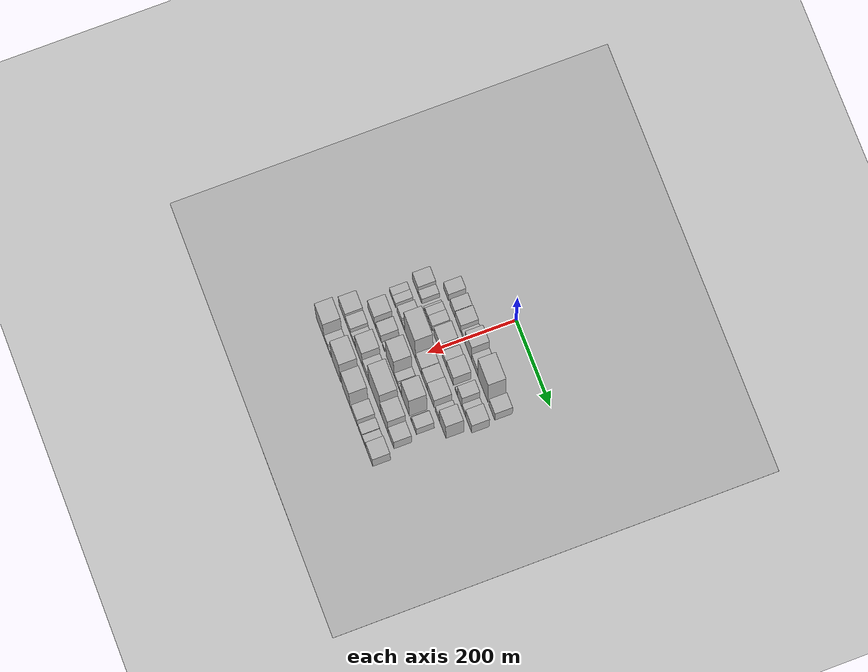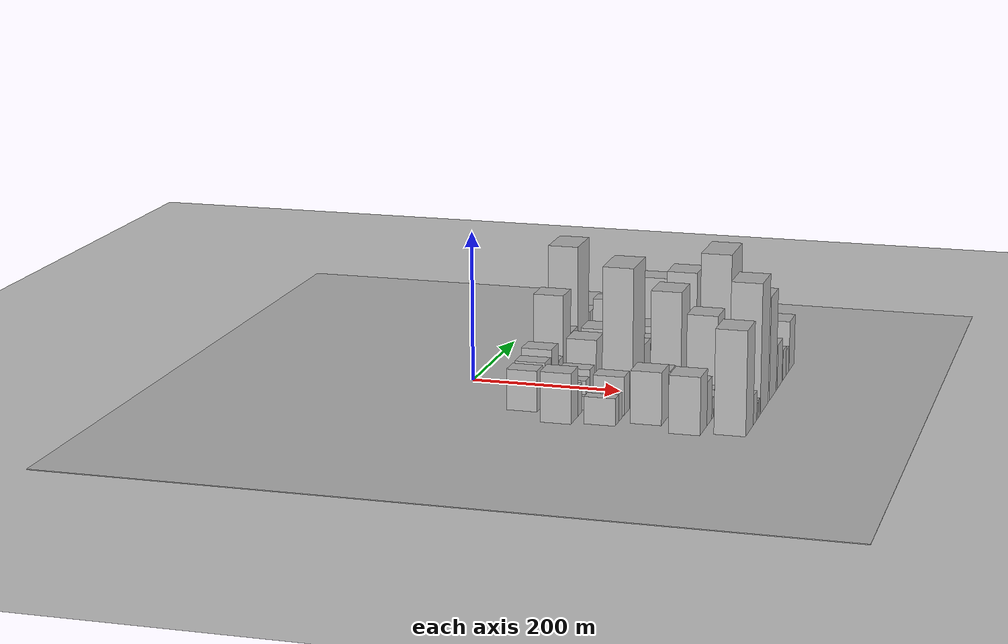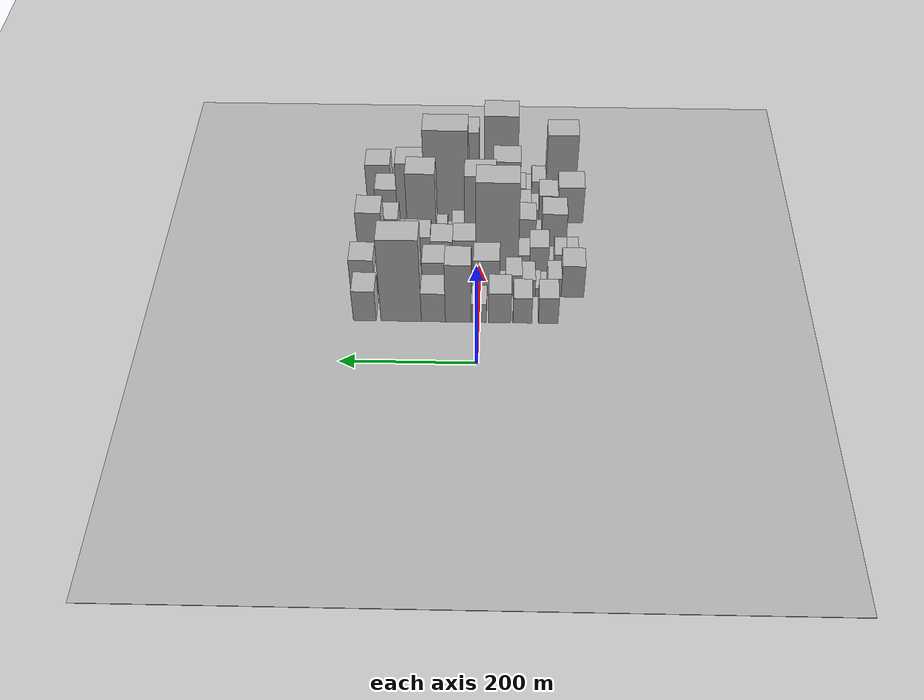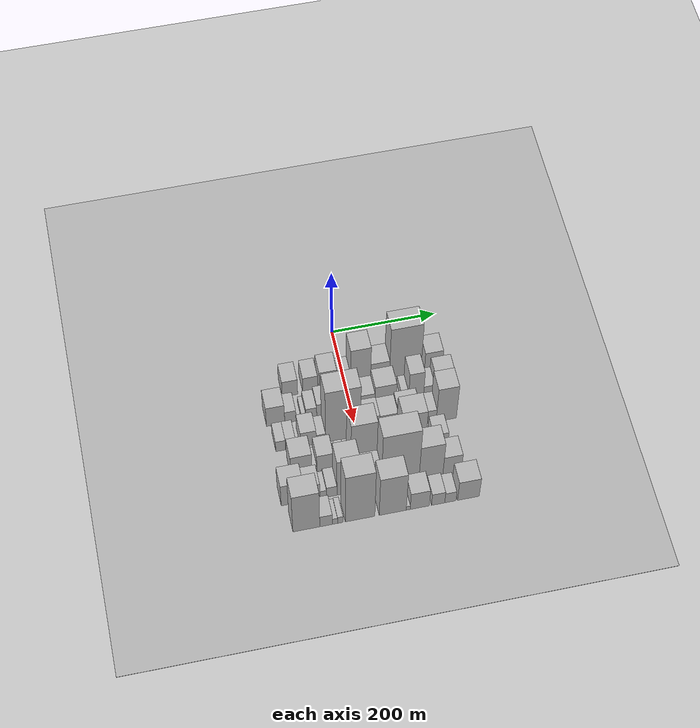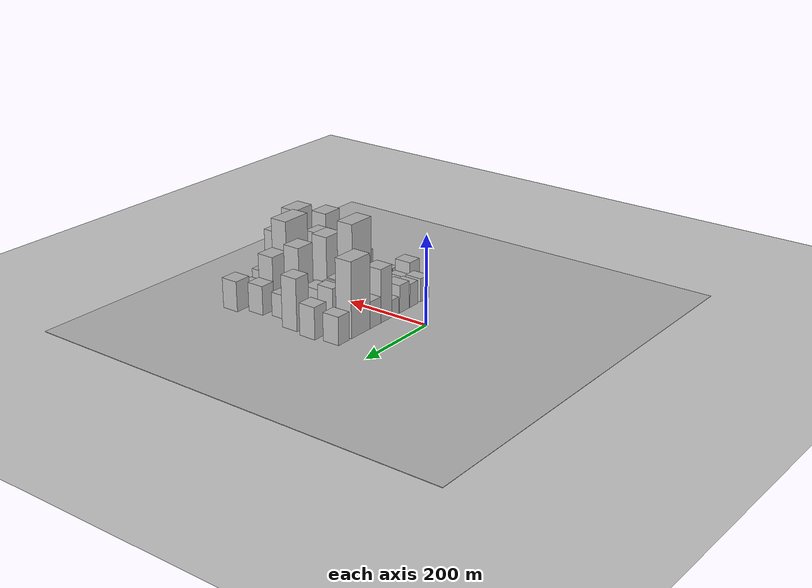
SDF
<sdf version="1.6">
 <world name="default">
  <include><name>ground_plane_1</name><uri>model://HANNAS_ground_plane</uri></include>
  <include>
   <name>ground_plane_2</name>
   <uri>model://HANNAS_ground_plane</uri>
   <pose>100 0 0  0 0 0</pose>
  </include>
  <model name="building_21">
   <static>1</static>
   <pose>100.0000 -104.7841 0 0.000000 0.000000 0.000000</pose>
   <link name="link">
    <pose>0 0 27.00 0 0 0</pose>
    <collision name="collision"><geometry><box><size>40.0000 29.2116 54.0000</size></box></geometry></collision>
    <visual name="visual">
     <cast_shadows>0</cast_shadows>
     <geometry><box><size>40.0000 29.2116 54.0000</size></box></geometry>
     <material>
      <script>
       <uri>model://HANNAS_wall/materials/scripts</uri>
       <uri>model://HANNAS_wall/materials/textures</uri>
       <name>vrc/HANNAS_wall</name>
      </script>
     </material>
    </visual>
   </link>
  </model>
  <model name="building_22">
   <static>1</static>
   <pose>100.0000 -66.1163 0 0.000000 0.000000 0.000000</pose>
   <link name="link">
    <pose>0 0 27.00 0 0 0</pose>
    <collision name="collision"><geometry><box><size>40.0000 28.1240 54.0000</size></box></geometry></collision>
    <visual name="visual">
     <cast_shadows>0</cast_shadows>
     <geometry><box><size>40.0000 28.1240 54.0000</size></box></geometry>
     <material>
      <script>
       <uri>model://HANNAS_wall/materials/scripts</uri>
       <uri>model://HANNAS_wall/materials/textures</uri>
       <name>vrc/HANNAS_wall</name>
      </script>
     </material>
    </visual>
   </link>
  </model>
  <model name="building_23">
   <static>1</static>
   <pose>100.0000 -32.3615 0 0.000000 0.000000 0.000000</pose>
   <link name="link">
    <pose>0 0 31.50 0 0 0</pose>
    <collision name="collision"><geometry><box><size>40.0000 33.3856 63.0000</size></box></geometry></collision>
    <visual name="visual">
     <cast_shadows>0</cast_shadows>
     <geometry><box><size>40.0000 33.3856 63.0000</size></box></geometry>
     <material>
      <script>
       <uri>model://HANNAS_wall/materials/scripts</uri>
       <uri>model://HANNAS_wall/materials/textures</uri>
       <name>vrc/HANNAS_wall</name>
      </script>
     </material>
    </visual>
   </link>
  </model>
  <model name="building_24">
   <static>1</static>
   <pose>100.0000 -1.1424 0 0.000000 0.000000 0.000000</pose>
   <link name="link">
    <pose>0 0 19.50 0 0 0</pose>
    <collision name="collision"><geometry><box><size>40.0000 23.0525 39.0000</size></box></geometry></collision>
    <visual name="visual">
     <cast_shadows>0</cast_shadows>
     <geometry><box><size>40.0000 23.0525 39.0000</size></box></geometry>
     <material>
      <script>
       <uri>model://HANNAS_wall/materials/scripts</uri>
       <uri>model://HANNAS_wall/materials/textures</uri>
       <name>vrc/HANNAS_wall</name>
      </script>
     </material>
    </visual>
   </link>
  </model>
  <model name="building_25">
   <static>1</static>
   <pose>100.0000 29.5940 0 0.000000 0.000000 0.000000</pose>
   <link name="link">
    <pose>0 0 60.00 0 0 0</pose>
    <collision name="collision"><geometry><box><size>40.0000 38.4205 120.0000</size></box></geometry></collision>
    <visual name="visual">
     <cast_shadows>0</cast_shadows>
     <geometry><box><size>40.0000 38.4205 120.0000</size></box></geometry>
     <material>
      <script>
       <uri>model://HANNAS_wall/materials/scripts</uri>
       <uri>model://HANNAS_wall/materials/textures</uri>
       <name>vrc/HANNAS_wall</name>
      </script>
     </material>
    </visual>
   </link>
  </model>
  <model name="building_26">
   <static>1</static>
   <pose>100.0000 66.7108 0 0.000000 0.000000 0.000000</pose>
   <link name="link">
    <pose>0 0 30.00 0 0 0</pose>
    <collision name="collision"><geometry><box><size>40.0000 35.8131 60.0000</size></box></geometry></collision>
    <visual name="visual">
     <cast_shadows>0</cast_shadows>
     <geometry><box><size>40.0000 35.8131 60.0000</size></box></geometry>
     <material>
      <script>
       <uri>model://HANNAS_wall/materials/scripts</uri>
       <uri>model://HANNAS_wall/materials/textures</uri>
       <name>vrc/HANNAS_wall</name>
      </script>
     </material>
    </visual>
   </link>
  </model>
  <model name="building_27">
   <static>1</static>
   <pose>100.0000 114.8722 0 0.000000 0.000000 0.000000</pose>
   <link name="link">
    <pose>0 0 84.00 0 0 0</pose>
    <collision name="collision"><geometry><box><size>40.0000 60.5097 168.0000</size></box></geometry></collision>
    <visual name="visual">
     <cast_shadows>0</cast_shadows>
     <geometry><box><size>40.0000 60.5097 168.0000</size></box></geometry>
     <material>
      <script>
       <uri>model://HANNAS_wall/materials/scripts</uri>
       <uri>model://HANNAS_wall/materials/textures</uri>
       <name>vrc/HANNAS_wall</name>
      </script>
     </material>
    </visual>
   </link>
  </model>
  <model name="building_28">
   <static>1</static>
   <pose>100.0000 169.2701 0 0.000000 0.000000 0.000000</pose>
   <link name="link">
    <pose>0 0 31.50 0 0 0</pose>
    <collision name="collision"><geometry><box><size>40.0000 34.2860 63.0000</size></box></geometry></collision>
    <visual name="visual">
     <cast_shadows>0</cast_shadows>
     <geometry><box><size>40.0000 34.2860 63.0000</size></box></geometry>
     <material>
      <script>
       <uri>model://HANNAS_wall/materials/scripts</uri>
       <uri>model://HANNAS_wall/materials/textures</uri>
       <name>vrc/HANNAS_wall</name>
      </script>
     </material>
    </visual>
   </link>
  </model>
  <model name="building_66">
   <static>1</static>
   <pose>155.0000 -142.3856 0 0.000000 0.000000 0.000000</pose>
   <link name="link">
    <pose>0 0 33.00 0 0 0</pose>
    <collision name="collision"><geometry><box><size>40.0000 34.3880 66.0000</size></box></geometry></collision>
    <visual name="visual">
     <cast_shadows>0</cast_shadows>
     <geometry><box><size>40.0000 34.3880 66.0000</size></box></geometry>
     <material>
      <script>
       <uri>model://HANNAS_wall/materials/scripts</uri>
       <uri>model://HANNAS_wall/materials/textures</uri>
       <name>vrc/HANNAS_wall</name>
      </script>
     </material>
    </visual>
   </link>
  </model>
  <model name="building_67">
   <static>1</static>
   <pose>155.0000 -114.5711 0 0.000000 0.000000 0.000000</pose>
   <link name="link">
    <pose>0 0 19.50 0 0 0</pose>
    <collision name="collision"><geometry><box><size>40.0000 21.2411 39.0000</size></box></geometry></collision>
    <visual name="visual">
     <cast_shadows>0</cast_shadows>
     <geometry><box><size>40.0000 21.2411 39.0000</size></box></geometry>
     <material>
      <script>
       <uri>model://HANNAS_wall/materials/scripts</uri>
       <uri>model://HANNAS_wall/materials/textures</uri>
       <name>vrc/HANNAS_wall</name>
      </script>
     </material>
    </visual>
   </link>
  </model>
  <model name="building_68">
   <static>1</static>
   <pose>155.0000 -89.7761 0 0.000000 0.000000 0.000000</pose>
   <link name="link">
    <pose>0 0 9.00 0 0 0</pose>
    <collision name="collision"><geometry><box><size>40.0000 8.3489 18.0000</size></box></geometry></collision>
    <visual name="visual">
     <cast_shadows>0</cast_shadows>
     <geometry><box><size>40.0000 8.3489 18.0000</size></box></geometry>
     <material>
      <script>
       <uri>model://HANNAS_wall/materials/scripts</uri>
       <uri>model://HANNAS_wall/materials/textures</uri>
       <name>vrc/HANNAS_wall</name>
      </script>
     </material>
    </visual>
   </link>
  </model>
  <model name="building_69">
   <static>1</static>
   <pose>155.0000 -75.3981 0 0.000000 0.000000 0.000000</pose>
   <link name="link">
    <pose>0 0 18.00 0 0 0</pose>
    <collision name="collision"><geometry><box><size>40.0000 20.4071 36.0000</size></box></geometry></collision>
    <visual name="visual">
     <cast_shadows>0</cast_shadows>
     <geometry><box><size>40.0000 20.4071 36.0000</size></box></geometry>
     <material>
      <script>
       <uri>model://HANNAS_wall/materials/scripts</uri>
       <uri>model://HANNAS_wall/materials/textures</uri>
       <name>vrc/HANNAS_wall</name>
      </script>
     </material>
    </visual>
   </link>
  </model>
  <model name="building_70">
   <static>1</static>
   <pose>155.0000 -52.7753 0 0.000000 0.000000 0.000000</pose>
   <link name="link">
    <pose>0 0 22.50 0 0 0</pose>
    <collision name="collision"><geometry><box><size>40.0000 24.8387 45.0000</size></box></geometry></collision>
    <visual name="visual">
     <cast_shadows>0</cast_shadows>
     <geometry><box><size>40.0000 24.8387 45.0000</size></box></geometry>
     <material>
      <script>
       <uri>model://HANNAS_wall/materials/scripts</uri>
       <uri>model://HANNAS_wall/materials/textures</uri>
       <name>vrc/HANNAS_wall</name>
      </script>
     </material>
    </visual>
   </link>
  </model>
  <model name="building_71">
   <static>1</static>
   <pose>155.0000 -11.5307 0 0.000000 0.000000 0.000000</pose>
   <link name="link">
    <pose>0 0 37.50 0 0 0</pose>
    <collision name="collision"><geometry><box><size>40.0000 39.6504 75.0000</size></box></geometry></collision>
    <visual name="visual">
     <cast_shadows>0</cast_shadows>
     <geometry><box><size>40.0000 39.6504 75.0000</size></box></geometry>
     <material>
      <script>
       <uri>model://HANNAS_wall/materials/scripts</uri>
       <uri>model://HANNAS_wall/materials/textures</uri>
       <name>vrc/HANNAS_wall</name>
      </script>
     </material>
    </visual>
   </link>
  </model>
  <model name="building_72">
   <static>1</static>
   <pose>155.0000 30.9175 0 0.000000 0.000000 0.000000</pose>
   <link name="link">
    <pose>0 0 24.00 0 0 0</pose>
    <collision name="collision"><geometry><box><size>40.0000 27.2462 48.0000</size></box></geometry></collision>
    <visual name="visual">
     <cast_shadows>0</cast_shadows>
     <geometry><box><size>40.0000 27.2462 48.0000</size></box></geometry>
     <material>
      <script>
       <uri>model://HANNAS_wall/materials/scripts</uri>
       <uri>model://HANNAS_wall/materials/textures</uri>
       <name>vrc/HANNAS_wall</name>
      </script>
     </material>
    </visual>
   </link>
  </model>
  <model name="building_73">
   <static>1</static>
   <pose>155.0000 64.9169 0 0.000000 0.000000 0.000000</pose>
   <link name="link">
    <pose>0 0 34.50 0 0 0</pose>
    <collision name="collision"><geometry><box><size>40.0000 40.7525 69.0000</size></box></geometry></collision>
    <visual name="visual">
     <cast_shadows>0</cast_shadows>
     <geometry><box><size>40.0000 40.7525 69.0000</size></box></geometry>
     <material>
      <script>
       <uri>model://HANNAS_wall/materials/scripts</uri>
       <uri>model://HANNAS_wall/materials/textures</uri>
       <name>vrc/HANNAS_wall</name>
      </script>
     </material>
    </visual>
   </link>
  </model>
  <model name="building_74">
   <static>1</static>
   <pose>155.0000 102.0256 0 0.000000 0.000000 0.000000</pose>
   <link name="link">
    <pose>0 0 13.50 0 0 0</pose>
    <collision name="collision"><geometry><box><size>40.0000 13.4650 27.0000</size></box></geometry></collision>
    <visual name="visual">
     <cast_shadows>0</cast_shadows>
     <geometry><box><size>40.0000 13.4650 27.0000</size></box></geometry>
     <material>
      <script>
       <uri>model://HANNAS_wall/materials/scripts</uri>
       <uri>model://HANNAS_wall/materials/textures</uri>
       <name>vrc/HANNAS_wall</name>
      </script>
     </material>
    </visual>
   </link>
  </model>
  <model name="building_75">
   <static>1</static>
   <pose>155.0000 122.9810 0 0.000000 0.000000 0.000000</pose>
   <link name="link">
    <pose>0 0 46.50 0 0 0</pose>
    <collision name="collision"><geometry><box><size>40.0000 28.4457 93.0000</size></box></geometry></collision>
    <visual name="visual">
     <cast_shadows>0</cast_shadows>
     <geometry><box><size>40.0000 28.4457 93.0000</size></box></geometry>
     <material>
      <script>
       <uri>model://HANNAS_wall/materials/scripts</uri>
       <uri>model://HANNAS_wall/materials/textures</uri>
       <name>vrc/HANNAS_wall</name>
      </script>
     </material>
    </visual>
   </link>
  </model>
  <model name="building_76">
   <static>1</static>
   <pose>155.0000 147.5843 0 0.000000 0.000000 0.000000</pose>
   <link name="link">
    <pose>0 0 19.50 0 0 0</pose>
    <collision name="collision"><geometry><box><size>40.0000 20.7608 39.0000</size></box></geometry></collision>
    <visual name="visual">
     <cast_shadows>0</cast_shadows>
     <geometry><box><size>40.0000 20.7608 39.0000</size></box></geometry>
     <material>
      <script>
       <uri>model://HANNAS_wall/materials/scripts</uri>
       <uri>model://HANNAS_wall/materials/textures</uri>
       <name>vrc/HANNAS_wall</name>
      </script>
     </material>
    </visual>
   </link>
  </model>
  <model name="building_77">
   <static>1</static>
   <pose>155.0000 176.4453 0 0.000000 0.000000 0.000000</pose>
   <link name="link">
    <pose>0 0 36.00 0 0 0</pose>
    <collision name="collision"><geometry><box><size>40.0000 36.9612 72.0000</size></box></geometry></collision>
    <visual name="visual">
     <cast_shadows>0</cast_shadows>
     <geometry><box><size>40.0000 36.9612 72.0000</size></box></geometry>
     <material>
      <script>
       <uri>model://HANNAS_wall/materials/scripts</uri>
       <uri>model://HANNAS_wall/materials/textures</uri>
       <name>vrc/HANNAS_wall</name>
      </script>
     </material>
    </visual>
   </link>
  </model>
  <model name="building_119">
   <static>1</static>
   <pose>210.0000 -143.4747 0 0.000000 0.000000 0.000000</pose>
   <link name="link">
    <pose>0 0 18.00 0 0 0</pose>
    <collision name="collision"><geometry><box><size>40.0000 18.1914 36.0000</size></box></geometry></collision>
    <visual name="visual">
     <cast_shadows>0</cast_shadows>
     <geometry><box><size>40.0000 18.1914 36.0000</size></box></geometry>
     <material>
      <script>
       <uri>model://HANNAS_wall/materials/scripts</uri>
       <uri>model://HANNAS_wall/materials/textures</uri>
       <name>vrc/HANNAS_wall</name>
      </script>
     </material>
    </visual>
   </link>
  </model>
  <model name="building_120">
   <static>1</static>
   <pose>210.0000 -125.0250 0 0.000000 0.000000 0.000000</pose>
   <link name="link">
    <pose>0 0 18.00 0 0 0</pose>
    <collision name="collision"><geometry><box><size>40.0000 18.7080 36.0000</size></box></geometry></collision>
    <visual name="visual">
     <cast_shadows>0</cast_shadows>
     <geometry><box><size>40.0000 18.7080 36.0000</size></box></geometry>
     <material>
      <script>
       <uri>model://HANNAS_wall/materials/scripts</uri>
       <uri>model://HANNAS_wall/materials/textures</uri>
       <name>vrc/HANNAS_wall</name>
      </script>
     </material>
    </visual>
   </link>
  </model>
  <model name="building_121">
   <static>1</static>
   <pose>210.0000 -91.9413 0 0.000000 0.000000 0.000000</pose>
   <link name="link">
    <pose>0 0 25.50 0 0 0</pose>
    <collision name="collision"><geometry><box><size>40.0000 29.4593 51.0000</size></box></geometry></collision>
    <visual name="visual">
     <cast_shadows>0</cast_shadows>
     <geometry><box><size>40.0000 29.4593 51.0000</size></box></geometry>
     <material>
      <script>
       <uri>model://HANNAS_wall/materials/scripts</uri>
       <uri>model://HANNAS_wall/materials/textures</uri>
       <name>vrc/HANNAS_wall</name>
      </script>
     </material>
    </visual>
   </link>
  </model>
  <model name="building_122">
   <static>1</static>
   <pose>210.0000 -68.4383 0 0.000000 0.000000 0.000000</pose>
   <link name="link">
    <pose>0 0 16.50 0 0 0</pose>
    <collision name="collision"><geometry><box><size>40.0000 17.5467 33.0000</size></box></geometry></collision>
    <visual name="visual">
     <cast_shadows>0</cast_shadows>
     <geometry><box><size>40.0000 17.5467 33.0000</size></box></geometry>
     <material>
      <script>
       <uri>model://HANNAS_wall/materials/scripts</uri>
       <uri>model://HANNAS_wall/materials/textures</uri>
       <name>vrc/HANNAS_wall</name>
      </script>
     </material>
    </visual>
   </link>
  </model>
  <model name="building_123">
   <static>1</static>
   <pose>210.0000 -27.0615 0 0.000000 0.000000 0.000000</pose>
   <link name="link">
    <pose>0 0 90.00 0 0 0</pose>
    <collision name="collision"><geometry><box><size>40.0000 65.2070 180.0000</size></box></geometry></collision>
    <visual name="visual">
     <cast_shadows>0</cast_shadows>
     <geometry><box><size>40.0000 65.2070 180.0000</size></box></geometry>
     <material>
      <script>
       <uri>model://HANNAS_wall/materials/scripts</uri>
       <uri>model://HANNAS_wall/materials/textures</uri>
       <name>vrc/HANNAS_wall</name>
      </script>
     </material>
    </visual>
   </link>
  </model>
  <model name="building_124">
   <static>1</static>
   <pose>210.0000 23.4171 0 0.000000 0.000000 0.000000</pose>
   <link name="link">
    <pose>0 0 31.50 0 0 0</pose>
    <collision name="collision"><geometry><box><size>40.0000 35.7502 63.0000</size></box></geometry></collision>
    <visual name="visual">
     <cast_shadows>0</cast_shadows>
     <geometry><box><size>40.0000 35.7502 63.0000</size></box></geometry>
     <material>
      <script>
       <uri>model://HANNAS_wall/materials/scripts</uri>
       <uri>model://HANNAS_wall/materials/textures</uri>
       <name>vrc/HANNAS_wall</name>
      </script>
     </material>
    </visual>
   </link>
  </model>
  <model name="building_125">
   <static>1</static>
   <pose>210.0000 58.3332 0 0.000000 0.000000 0.000000</pose>
   <link name="link">
    <pose>0 0 30.00 0 0 0</pose>
    <collision name="collision"><geometry><box><size>40.0000 34.0820 60.0000</size></box></geometry></collision>
    <visual name="visual">
     <cast_shadows>0</cast_shadows>
     <geometry><box><size>40.0000 34.0820 60.0000</size></box></geometry>
     <material>
      <script>
       <uri>model://HANNAS_wall/materials/scripts</uri>
       <uri>model://HANNAS_wall/materials/textures</uri>
       <name>vrc/HANNAS_wall</name>
      </script>
     </material>
    </visual>
   </link>
  </model>
  <model name="building_126">
   <static>1</static>
   <pose>210.0000 95.7252 0 0.000000 0.000000 0.000000</pose>
   <link name="link">
    <pose>0 0 34.50 0 0 0</pose>
    <collision name="collision"><geometry><box><size>40.0000 40.7021 69.0000</size></box></geometry></collision>
    <visual name="visual">
     <cast_shadows>0</cast_shadows>
     <geometry><box><size>40.0000 40.7021 69.0000</size></box></geometry>
     <material>
      <script>
       <uri>model://HANNAS_wall/materials/scripts</uri>
       <uri>model://HANNAS_wall/materials/textures</uri>
       <name>vrc/HANNAS_wall</name>
      </script>
     </material>
    </visual>
   </link>
  </model>
  <model name="building_127">
   <static>1</static>
   <pose>210.0000 135.6655 0 0.000000 0.000000 0.000000</pose>
   <link name="link">
    <pose>0 0 22.50 0 0 0</pose>
    <collision name="collision"><geometry><box><size>40.0000 25.1785 45.0000</size></box></geometry></collision>
    <visual name="visual">
     <cast_shadows>0</cast_shadows>
     <geometry><box><size>40.0000 25.1785 45.0000</size></box></geometry>
     <material>
      <script>
       <uri>model://HANNAS_wall/materials/scripts</uri>
       <uri>model://HANNAS_wall/materials/textures</uri>
       <name>vrc/HANNAS_wall</name>
      </script>
     </material>
    </visual>
   </link>
  </model>
  <model name="building_128">
   <static>1</static>
   <pose>210.0000 167.3980 0 0.000000 0.000000 0.000000</pose>
   <link name="link">
    <pose>0 0 58.50 0 0 0</pose>
    <collision name="collision"><geometry><box><size>40.0000 38.2865 117.0000</size></box></geometry></collision>
    <visual name="visual">
     <cast_shadows>0</cast_shadows>
     <geometry><box><size>40.0000 38.2865 117.0000</size></box></geometry>
     <material>
      <script>
       <uri>model://HANNAS_wall/materials/scripts</uri>
       <uri>model://HANNAS_wall/materials/textures</uri>
       <name>vrc/HANNAS_wall</name>
      </script>
     </material>
    </visual>
   </link>
  </model>
  <model name="building_174">
   <static>1</static>
   <pose>265.0000 -116.0146 0 0.000000 0.000000 0.000000</pose>
   <link name="link">
    <pose>0 0 34.50 0 0 0</pose>
    <collision name="collision"><geometry><box><size>40.0000 39.2224 69.0000</size></box></geometry></collision>
    <visual name="visual">
     <cast_shadows>0</cast_shadows>
     <geometry><box><size>40.0000 39.2224 69.0000</size></box></geometry>
     <material>
      <script>
       <uri>model://HANNAS_wall/materials/scripts</uri>
       <uri>model://HANNAS_wall/materials/textures</uri>
       <name>vrc/HANNAS_wall</name>
      </script>
     </material>
    </visual>
   </link>
  </model>
  <model name="building_175">
   <static>1</static>
   <pose>265.0000 -91.8677 0 0.000000 0.000000 0.000000</pose>
   <link name="link">
    <pose>0 0 10.50 0 0 0</pose>
    <collision name="collision"><geometry><box><size>40.0000 9.0713 21.0000</size></box></geometry></collision>
    <visual name="visual">
     <cast_shadows>0</cast_shadows>
     <geometry><box><size>40.0000 9.0713 21.0000</size></box></geometry>
     <material>
      <script>
       <uri>model://HANNAS_wall/materials/scripts</uri>
       <uri>model://HANNAS_wall/materials/textures</uri>
       <name>vrc/HANNAS_wall</name>
      </script>
     </material>
    </visual>
   </link>
  </model>
  <model name="building_176">
   <static>1</static>
   <pose>265.0000 -71.9111 0 0.000000 0.000000 0.000000</pose>
   <link name="link">
    <pose>0 0 28.50 0 0 0</pose>
    <collision name="collision"><geometry><box><size>40.0000 30.8420 57.0000</size></box></geometry></collision>
    <visual name="visual">
     <cast_shadows>0</cast_shadows>
     <geometry><box><size>40.0000 30.8420 57.0000</size></box></geometry>
     <material>
      <script>
       <uri>model://HANNAS_wall/materials/scripts</uri>
       <uri>model://HANNAS_wall/materials/textures</uri>
       <name>vrc/HANNAS_wall</name>
      </script>
     </material>
    </visual>
   </link>
  </model>
  <model name="building_177">
   <static>1</static>
   <pose>265.0000 -41.8620 0 0.000000 0.000000 0.000000</pose>
   <link name="link">
    <pose>0 0 15.00 0 0 0</pose>
    <collision name="collision"><geometry><box><size>40.0000 15.2563 30.0000</size></box></geometry></collision>
    <visual name="visual">
     <cast_shadows>0</cast_shadows>
     <geometry><box><size>40.0000 15.2563 30.0000</size></box></geometry>
     <material>
      <script>
       <uri>model://HANNAS_wall/materials/scripts</uri>
       <uri>model://HANNAS_wall/materials/textures</uri>
       <name>vrc/HANNAS_wall</name>
      </script>
     </material>
    </visual>
   </link>
  </model>
  <model name="building_178">
   <static>1</static>
   <pose>265.0000 0.0882 0 0.000000 0.000000 0.000000</pose>
   <link name="link">
    <pose>0 0 72.00 0 0 0</pose>
    <collision name="collision"><geometry><box><size>40.0000 48.6441 144.0000</size></box></geometry></collision>
    <visual name="visual">
     <cast_shadows>0</cast_shadows>
     <geometry><box><size>40.0000 48.6441 144.0000</size></box></geometry>
     <material>
      <script>
       <uri>model://HANNAS_wall/materials/scripts</uri>
       <uri>model://HANNAS_wall/materials/textures</uri>
       <name>vrc/HANNAS_wall</name>
      </script>
     </material>
    </visual>
   </link>
  </model>
  <model name="building_179">
   <static>1</static>
   <pose>265.0000 34.5836 0 0.000000 0.000000 0.000000</pose>
   <link name="link">
    <pose>0 0 19.50 0 0 0</pose>
    <collision name="collision"><geometry><box><size>40.0000 20.3467 39.0000</size></box></geometry></collision>
    <visual name="visual">
     <cast_shadows>0</cast_shadows>
     <geometry><box><size>40.0000 20.3467 39.0000</size></box></geometry>
     <material>
      <script>
       <uri>model://HANNAS_wall/materials/scripts</uri>
       <uri>model://HANNAS_wall/materials/textures</uri>
       <name>vrc/HANNAS_wall</name>
      </script>
     </material>
    </visual>
   </link>
  </model>
  <model name="building_180">
   <static>1</static>
   <pose>265.0000 48.4601 0 0.000000 0.000000 0.000000</pose>
   <link name="link">
    <pose>0 0 7.50 0 0 0</pose>
    <collision name="collision"><geometry><box><size>40.0000 7.4063 15.0000</size></box></geometry></collision>
    <visual name="visual">
     <cast_shadows>0</cast_shadows>
     <geometry><box><size>40.0000 7.4063 15.0000</size></box></geometry>
     <material>
      <script>
       <uri>model://HANNAS_wall/materials/scripts</uri>
       <uri>model://HANNAS_wall/materials/textures</uri>
       <name>vrc/HANNAS_wall</name>
      </script>
     </material>
    </visual>
   </link>
  </model>
  <model name="building_181">
   <static>1</static>
   <pose>265.0000 60.6278 0 0.000000 0.000000 0.000000</pose>
   <link name="link">
    <pose>0 0 15.00 0 0 0</pose>
    <collision name="collision"><geometry><box><size>40.0000 16.9291 30.0000</size></box></geometry></collision>
    <visual name="visual">
     <cast_shadows>0</cast_shadows>
     <geometry><box><size>40.0000 16.9291 30.0000</size></box></geometry>
     <material>
      <script>
       <uri>model://HANNAS_wall/materials/scripts</uri>
       <uri>model://HANNAS_wall/materials/textures</uri>
       <name>vrc/HANNAS_wall</name>
      </script>
     </material>
    </visual>
   </link>
  </model>
  <model name="building_182">
   <static>1</static>
   <pose>265.0000 91.6451 0 0.000000 0.000000 0.000000</pose>
   <link name="link">
    <pose>0 0 73.50 0 0 0</pose>
    <collision name="collision"><geometry><box><size>40.0000 45.1054 147.0000</size></box></geometry></collision>
    <visual name="visual">
     <cast_shadows>0</cast_shadows>
     <geometry><box><size>40.0000 45.1054 147.0000</size></box></geometry>
     <material>
      <script>
       <uri>model://HANNAS_wall/materials/scripts</uri>
       <uri>model://HANNAS_wall/materials/textures</uri>
       <name>vrc/HANNAS_wall</name>
      </script>
     </material>
    </visual>
   </link>
  </model>
  <model name="building_183">
   <static>1</static>
   <pose>265.0000 124.5197 0 0.000000 0.000000 0.000000</pose>
   <link name="link">
    <pose>0 0 9.00 0 0 0</pose>
    <collision name="collision"><geometry><box><size>40.0000 8.6438 18.0000</size></box></geometry></collision>
    <visual name="visual">
     <cast_shadows>0</cast_shadows>
     <geometry><box><size>40.0000 8.6438 18.0000</size></box></geometry>
     <material>
      <script>
       <uri>model://HANNAS_wall/materials/scripts</uri>
       <uri>model://HANNAS_wall/materials/textures</uri>
       <name>vrc/HANNAS_wall</name>
      </script>
     </material>
    </visual>
   </link>
  </model>
  <model name="building_184">
   <static>1</static>
   <pose>265.0000 142.8534 0 0.000000 0.000000 0.000000</pose>
   <link name="link">
    <pose>0 0 27.00 0 0 0</pose>
    <collision name="collision"><geometry><box><size>40.0000 28.0237 54.0000</size></box></geometry></collision>
    <visual name="visual">
     <cast_shadows>0</cast_shadows>
     <geometry><box><size>40.0000 28.0237 54.0000</size></box></geometry>
     <material>
      <script>
       <uri>model://HANNAS_wall/materials/scripts</uri>
       <uri>model://HANNAS_wall/materials/textures</uri>
       <name>vrc/HANNAS_wall</name>
      </script>
     </material>
    </visual>
   </link>
  </model>
  <model name="building_230">
   <static>1</static>
   <pose>320.0000 -143.3285 0 0.000000 0.000000 0.000000</pose>
   <link name="link">
    <pose>0 0 37.50 0 0 0</pose>
    <collision name="collision"><geometry><box><size>40.0000 41.0558 75.0000</size></box></geometry></collision>
    <visual name="visual">
     <cast_shadows>0</cast_shadows>
     <geometry><box><size>40.0000 41.0558 75.0000</size></box></geometry>
     <material>
      <script>
       <uri>model://HANNAS_wall/materials/scripts</uri>
       <uri>model://HANNAS_wall/materials/textures</uri>
       <name>vrc/HANNAS_wall</name>
      </script>
     </material>
    </visual>
   </link>
  </model>
  <model name="building_231">
   <static>1</static>
   <pose>320.0000 -107.8401 0 0.000000 0.000000 0.000000</pose>
   <link name="link">
    <pose>0 0 28.50 0 0 0</pose>
    <collision name="collision"><geometry><box><size>40.0000 29.9210 57.0000</size></box></geometry></collision>
    <visual name="visual">
     <cast_shadows>0</cast_shadows>
     <geometry><box><size>40.0000 29.9210 57.0000</size></box></geometry>
     <material>
      <script>
       <uri>model://HANNAS_wall/materials/scripts</uri>
       <uri>model://HANNAS_wall/materials/textures</uri>
       <name>vrc/HANNAS_wall</name>
      </script>
     </material>
    </visual>
   </link>
  </model>
  <model name="building_232">
   <static>1</static>
   <pose>320.0000 -86.8398 0 0.000000 0.000000 0.000000</pose>
   <link name="link">
    <pose>0 0 13.50 0 0 0</pose>
    <collision name="collision"><geometry><box><size>40.0000 12.0794 27.0000</size></box></geometry></collision>
    <visual name="visual">
     <cast_shadows>0</cast_shadows>
     <geometry><box><size>40.0000 12.0794 27.0000</size></box></geometry>
     <material>
      <script>
       <uri>model://HANNAS_wall/materials/scripts</uri>
       <uri>model://HANNAS_wall/materials/textures</uri>
       <name>vrc/HANNAS_wall</name>
      </script>
     </material>
    </visual>
   </link>
  </model>
  <model name="building_233">
   <static>1</static>
   <pose>320.0000 -71.2586 0 0.000000 0.000000 0.000000</pose>
   <link name="link">
    <pose>0 0 18.00 0 0 0</pose>
    <collision name="collision"><geometry><box><size>40.0000 19.0831 36.0000</size></box></geometry></collision>
    <visual name="visual">
     <cast_shadows>0</cast_shadows>
     <geometry><box><size>40.0000 19.0831 36.0000</size></box></geometry>
     <material>
      <script>
       <uri>model://HANNAS_wall/materials/scripts</uri>
       <uri>model://HANNAS_wall/materials/textures</uri>
       <name>vrc/HANNAS_wall</name>
      </script>
     </material>
    </visual>
   </link>
  </model>
  <model name="building_234">
   <static>1</static>
   <pose>320.0000 -40.6106 0 0.000000 0.000000 0.000000</pose>
   <link name="link">
    <pose>0 0 63.00 0 0 0</pose>
    <collision name="collision"><geometry><box><size>40.0000 42.2128 126.0000</size></box></geometry></collision>
    <visual name="visual">
     <cast_shadows>0</cast_shadows>
     <geometry><box><size>40.0000 42.2128 126.0000</size></box></geometry>
     <material>
      <script>
       <uri>model://HANNAS_wall/materials/scripts</uri>
       <uri>model://HANNAS_wall/materials/textures</uri>
       <name>vrc/HANNAS_wall</name>
      </script>
     </material>
    </visual>
   </link>
  </model>
  <model name="building_235">
   <static>1</static>
   <pose>320.0000 0.3163 0 0.000000 0.000000 0.000000</pose>
   <link name="link">
    <pose>0 0 34.50 0 0 0</pose>
    <collision name="collision"><geometry><box><size>40.0000 39.6410 69.0000</size></box></geometry></collision>
    <visual name="visual">
     <cast_shadows>0</cast_shadows>
     <geometry><box><size>40.0000 39.6410 69.0000</size></box></geometry>
     <material>
      <script>
       <uri>model://HANNAS_wall/materials/scripts</uri>
       <uri>model://HANNAS_wall/materials/textures</uri>
       <name>vrc/HANNAS_wall</name>
      </script>
     </material>
    </visual>
   </link>
  </model>
  <model name="building_236">
   <static>1</static>
   <pose>320.0000 55.0001 0 0.000000 0.000000 0.000000</pose>
   <link name="link">
    <pose>0 0 93.00 0 0 0</pose>
    <collision name="collision"><geometry><box><size>40.0000 69.7267 186.0000</size></box></geometry></collision>
    <visual name="visual">
     <cast_shadows>0</cast_shadows>
     <geometry><box><size>40.0000 69.7267 186.0000</size></box></geometry>
     <material>
      <script>
       <uri>model://HANNAS_wall/materials/scripts</uri>
       <uri>model://HANNAS_wall/materials/textures</uri>
       <name>vrc/HANNAS_wall</name>
      </script>
     </material>
    </visual>
   </link>
  </model>
  <model name="building_237">
   <static>1</static>
   <pose>320.0000 112.0720 0 0.000000 0.000000 0.000000</pose>
   <link name="link">
    <pose>0 0 60.00 0 0 0</pose>
    <collision name="collision"><geometry><box><size>40.0000 44.4170 120.0000</size></box></geometry></collision>
    <visual name="visual">
     <cast_shadows>0</cast_shadows>
     <geometry><box><size>40.0000 44.4170 120.0000</size></box></geometry>
     <material>
      <script>
       <uri>model://HANNAS_wall/materials/scripts</uri>
       <uri>model://HANNAS_wall/materials/textures</uri>
       <name>vrc/HANNAS_wall</name>
      </script>
     </material>
    </visual>
   </link>
  </model>
  <model name="building_238">
   <static>1</static>
   <pose>320.0000 151.5237 0 0.000000 0.000000 0.000000</pose>
   <link name="link">
    <pose>0 0 33.00 0 0 0</pose>
    <collision name="collision"><geometry><box><size>40.0000 34.4865 66.0000</size></box></geometry></collision>
    <visual name="visual">
     <cast_shadows>0</cast_shadows>
     <geometry><box><size>40.0000 34.4865 66.0000</size></box></geometry>
     <material>
      <script>
       <uri>model://HANNAS_wall/materials/scripts</uri>
       <uri>model://HANNAS_wall/materials/textures</uri>
       <name>vrc/HANNAS_wall</name>
      </script>
     </material>
    </visual>
   </link>
  </model>
  <model name="building_278">
   <static>1</static>
   <pose>375.0000 -128.8965 0 0.000000 0.000000 0.000000</pose>
   <link name="link">
    <pose>0 0 67.50 0 0 0</pose>
    <collision name="collision"><geometry><box><size>40.0000 48.8987 135.0000</size></box></geometry></collision>
    <visual name="visual">
     <cast_shadows>0</cast_shadows>
     <geometry><box><size>40.0000 48.8987 135.0000</size></box></geometry>
     <material>
      <script>
       <uri>model://HANNAS_wall/materials/scripts</uri>
       <uri>model://HANNAS_wall/materials/textures</uri>
       <name>vrc/HANNAS_wall</name>
      </script>
     </material>
    </visual>
   </link>
  </model>
  <model name="building_279">
   <static>1</static>
   <pose>375.0000 -92.9913 0 0.000000 0.000000 0.000000</pose>
   <link name="link">
    <pose>0 0 19.50 0 0 0</pose>
    <collision name="collision"><geometry><box><size>40.0000 22.9118 39.0000</size></box></geometry></collision>
    <visual name="visual">
     <cast_shadows>0</cast_shadows>
     <geometry><box><size>40.0000 22.9118 39.0000</size></box></geometry>
     <material>
      <script>
       <uri>model://HANNAS_wall/materials/scripts</uri>
       <uri>model://HANNAS_wall/materials/textures</uri>
       <name>vrc/HANNAS_wall</name>
      </script>
     </material>
    </visual>
   </link>
  </model>
  <model name="building_280">
   <static>1</static>
   <pose>375.0000 -76.8929 0 0.000000 0.000000 0.000000</pose>
   <link name="link">
    <pose>0 0 10.50 0 0 0</pose>
    <collision name="collision"><geometry><box><size>40.0000 9.2851 21.0000</size></box></geometry></collision>
    <visual name="visual">
     <cast_shadows>0</cast_shadows>
     <geometry><box><size>40.0000 9.2851 21.0000</size></box></geometry>
     <material>
      <script>
       <uri>model://HANNAS_wall/materials/scripts</uri>
       <uri>model://HANNAS_wall/materials/textures</uri>
       <name>vrc/HANNAS_wall</name>
      </script>
     </material>
    </visual>
   </link>
  </model>
  <model name="building_281">
   <static>1</static>
   <pose>375.0000 -67.1995 0 0.000000 0.000000 0.000000</pose>
   <link name="link">
    <pose>0 0 12.00 0 0 0</pose>
    <collision name="collision"><geometry><box><size>40.0000 10.1016 24.0000</size></box></geometry></collision>
    <visual name="visual">
     <cast_shadows>0</cast_shadows>
     <geometry><box><size>40.0000 10.1016 24.0000</size></box></geometry>
     <material>
      <script>
       <uri>model://HANNAS_wall/materials/scripts</uri>
       <uri>model://HANNAS_wall/materials/textures</uri>
       <name>vrc/HANNAS_wall</name>
      </script>
     </material>
    </visual>
   </link>
  </model>
  <model name="building_282">
   <static>1</static>
   <pose>375.0000 -31.0956 0 0.000000 0.000000 0.000000</pose>
   <link name="link">
    <pose>0 0 85.50 0 0 0</pose>
    <collision name="collision"><geometry><box><size>40.0000 54.1062 171.0000</size></box></geometry></collision>
    <visual name="visual">
     <cast_shadows>0</cast_shadows>
     <geometry><box><size>40.0000 54.1062 171.0000</size></box></geometry>
     <material>
      <script>
       <uri>model://HANNAS_wall/materials/scripts</uri>
       <uri>model://HANNAS_wall/materials/textures</uri>
       <name>vrc/HANNAS_wall</name>
      </script>
     </material>
    </visual>
   </link>
  </model>
  <model name="building_283">
   <static>1</static>
   <pose>375.0000 28.7599 0 0.000000 0.000000 0.000000</pose>
   <link name="link">
    <pose>0 0 69.00 0 0 0</pose>
    <collision name="collision"><geometry><box><size>40.0000 49.6047 138.0000</size></box></geometry></collision>
    <visual name="visual">
     <cast_shadows>0</cast_shadows>
     <geometry><box><size>40.0000 49.6047 138.0000</size></box></geometry>
     <material>
      <script>
       <uri>model://HANNAS_wall/materials/scripts</uri>
       <uri>model://HANNAS_wall/materials/textures</uri>
       <name>vrc/HANNAS_wall</name>
      </script>
     </material>
    </visual>
   </link>
  </model>
  <model name="building_284">
   <static>1</static>
   <pose>375.0000 57.2047 0 0.000000 0.000000 0.000000</pose>
   <link name="link">
    <pose>0 0 7.50 0 0 0</pose>
    <collision name="collision"><geometry><box><size>40.0000 7.2850 15.0000</size></box></geometry></collision>
    <visual name="visual">
     <cast_shadows>0</cast_shadows>
     <geometry><box><size>40.0000 7.2850 15.0000</size></box></geometry>
     <material>
      <script>
       <uri>model://HANNAS_wall/materials/scripts</uri>
       <uri>model://HANNAS_wall/materials/textures</uri>
       <name>vrc/HANNAS_wall</name>
      </script>
     </material>
    </visual>
   </link>
  </model>
  <model name="building_285">
   <static>1</static>
   <pose>375.0000 78.4890 0 0.000000 0.000000 0.000000</pose>
   <link name="link">
    <pose>0 0 30.00 0 0 0</pose>
    <collision name="collision"><geometry><box><size>40.0000 35.2836 60.0000</size></box></geometry></collision>
    <visual name="visual">
     <cast_shadows>0</cast_shadows>
     <geometry><box><size>40.0000 35.2836 60.0000</size></box></geometry>
     <material>
      <script>
       <uri>model://HANNAS_wall/materials/scripts</uri>
       <uri>model://HANNAS_wall/materials/textures</uri>
       <name>vrc/HANNAS_wall</name>
      </script>
     </material>
    </visual>
   </link>
  </model>
  <model name="building_286">
   <static>1</static>
   <pose>375.0000 112.3815 0 0.000000 0.000000 0.000000</pose>
   <link name="link">
    <pose>0 0 21.00 0 0 0</pose>
    <collision name="collision"><geometry><box><size>40.0000 24.5013 42.0000</size></box></geometry></collision>
    <visual name="visual">
     <cast_shadows>0</cast_shadows>
     <geometry><box><size>40.0000 24.5013 42.0000</size></box></geometry>
     <material>
      <script>
       <uri>model://HANNAS_wall/materials/scripts</uri>
       <uri>model://HANNAS_wall/materials/textures</uri>
       <name>vrc/HANNAS_wall</name>
      </script>
     </material>
    </visual>
   </link>
  </model>
  <model name="building_287">
   <static>1</static>
   <pose>375.0000 134.9504 0 0.000000 0.000000 0.000000</pose>
   <link name="link">
    <pose>0 0 18.00 0 0 0</pose>
    <collision name="collision"><geometry><box><size>40.0000 20.6366 36.0000</size></box></geometry></collision>
    <visual name="visual">
     <cast_shadows>0</cast_shadows>
     <geometry><box><size>40.0000 20.6366 36.0000</size></box></geometry>
     <material>
      <script>
       <uri>model://HANNAS_wall/materials/scripts</uri>
       <uri>model://HANNAS_wall/materials/textures</uri>
       <name>vrc/HANNAS_wall</name>
      </script>
     </material>
    </visual>
   </link>
  </model>
  <model name="building_288">
   <static>1</static>
   <pose>375.0000 168.3161 0 0.000000 0.000000 0.000000</pose>
   <link name="link">
    <pose>0 0 34.50 0 0 0</pose>
    <collision name="collision"><geometry><box><size>40.0000 40.0948 69.0000</size></box></geometry></collision>
    <visual name="visual">
     <cast_shadows>0</cast_shadows>
     <geometry><box><size>40.0000 40.0948 69.0000</size></box></geometry>
     <material>
      <script>
       <uri>model://HANNAS_wall/materials/scripts</uri>
       <uri>model://HANNAS_wall/materials/textures</uri>
       <name>vrc/HANNAS_wall</name>
      </script>
     </material>
    </visual>
   </link>
  </model>
 </world>
</sdf>
